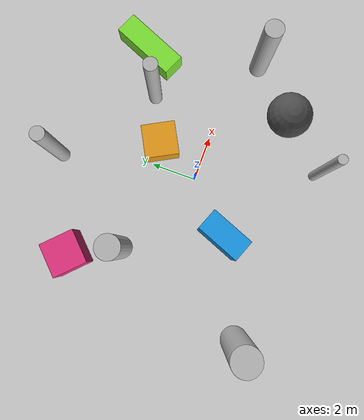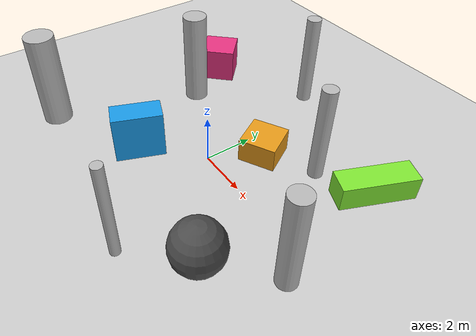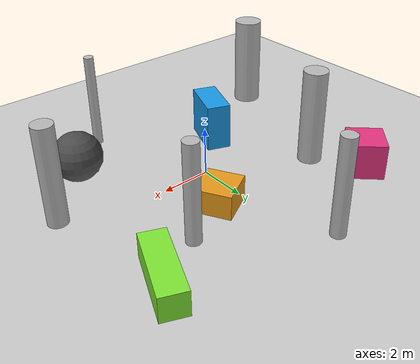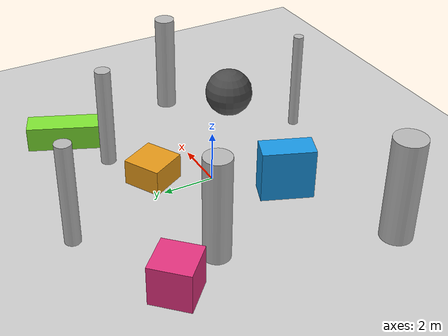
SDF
<?xml version="1.0" ?>
<sdf version="1.6">
  <world name="liosam_clutter">
    <include><uri>model://sun</uri></include>
    <include><uri>model://ground_plane</uri></include>

    <model name="pole_1"><pose>3 3 2 0 0 0</pose><static>true</static><link name="link"><collision name="c"><geometry><cylinder><radius>0.3</radius><length>4</length></cylinder></geometry></collision><visual name="v"><geometry><cylinder><radius>0.3</radius><length>4</length></cylinder></geometry></visual></link></model>
    <model name="pole_2"><pose>-4 2 2 0 0 0</pose><static>true</static><link name="link"><collision name="c"><geometry><cylinder><radius>0.5</radius><length>4</length></cylinder></geometry></collision><visual name="v"><geometry><cylinder><radius>0.5</radius><length>4</length></cylinder></geometry></visual></link></model>
    <model name="pole_3"><pose>2 -5 2 0 0 0</pose><static>true</static><link name="link"><collision name="c"><geometry><cylinder><radius>0.2</radius><length>4</length></cylinder></geometry></collision><visual name="v"><geometry><cylinder><radius>0.2</radius><length>4</length></cylinder></geometry></visual></link></model>
    <model name="pole_4"><pose>-6 -4 2 0 0 0</pose><static>true</static><link name="link"><collision name="c"><geometry><cylinder><radius>0.6</radius><length>4</length></cylinder></geometry></collision><visual name="v"><geometry><cylinder><radius>0.6</radius><length>4</length></cylinder></geometry></visual></link></model>
    <model name="pole_5"><pose>6 -1 2 0 0 0</pose><static>true</static><link name="link"><collision name="c"><geometry><cylinder><radius>0.4</radius><length>4</length></cylinder></geometry></collision><visual name="v"><geometry><cylinder><radius>0.4</radius><length>4</length></cylinder></geometry></visual></link></model>
    <model name="pole_6"><pose>-1 6 2 0 0 0</pose><static>true</static><link name="link"><collision name="c"><geometry><cylinder><radius>0.3</radius><length>4</length></cylinder></geometry></collision><visual name="v"><geometry><cylinder><radius>0.3</radius><length>4</length></cylinder></geometry></visual></link></model>

    <model name="block_1"><pose>1 2 0.5 0 0 0.5</pose><static>true</static><link name="link"><collision name="c"><geometry><box><size>1.5 1.5 1</size></box></geometry></collision><visual name="v"><geometry><box><size>1.5 1.5 1</size></box></geometry><material><ambient>0.9 0.6 0.1 1</ambient></material></visual></link></model>
    <model name="block_2"><pose>-2 -2 1 0 0 1.2</pose><static>true</static><link name="link"><collision name="c"><geometry><box><size>2 1 2</size></box></geometry></collision><visual name="v"><geometry><box><size>2 1 2</size></box></geometry><material><ambient>0.1 0.6 0.9 1</ambient></material></visual></link></model>
    <model name="block_3"><pose>5 4 0.5 0 0 -0.4</pose><static>true</static><link name="link"><collision name="c"><geometry><box><size>1 3 1</size></box></geometry></collision><visual name="v"><geometry><box><size>1 3 1</size></box></geometry><material><ambient>0.5 0.9 0.2 1</ambient></material></visual></link></model>
    <model name="block_4"><pose>-5 4 0.75 0 0 0.8</pose><static>true</static><link name="link"><collision name="c"><geometry><box><size>1.5 1.5 1.5</size></box></geometry></collision><visual name="v"><geometry><box><size>1.5 1.5 1.5</size></box></geometry><material><ambient>0.9 0.2 0.5 1</ambient></material></visual></link></model>

    <model name="sphere_1"><pose>4 -3 1 0 0 0</pose><static>true</static><link name="link"><collision name="c"><geometry><sphere><radius>1</radius></sphere></geometry></collision><visual name="v"><geometry><sphere><radius>1</radius></sphere></geometry><material><ambient>0.3 0.3 0.3 1</ambient></material></visual></link></model>
  </world>
</sdf>
